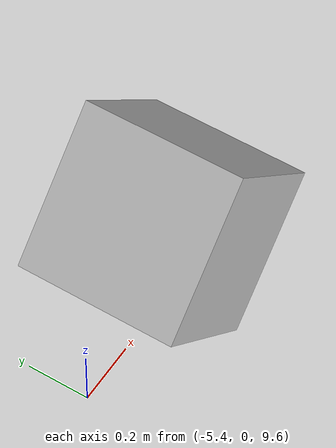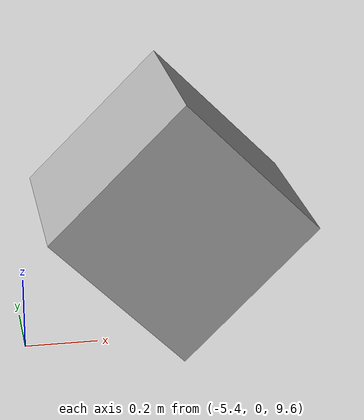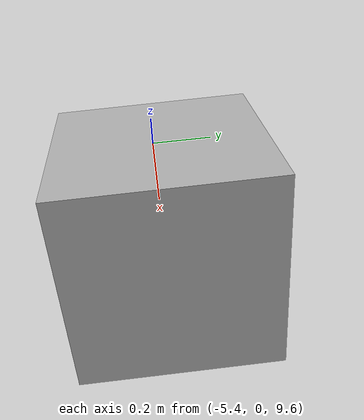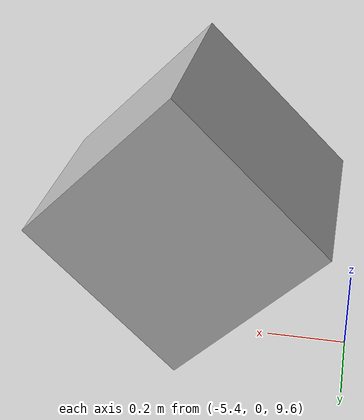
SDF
<?xml version="1.0" ?>
<sdf version="1.4">
  <world name="default">
    <include>
      <uri>model://ground_plane</uri>
    </include>
    <include>
      <uri>model://sun</uri>
    </include>

    <model name='camera'>
      <static>true</static>
      <pose>-5 0 10 0 0.785 0</pose>
      <link name='link'>
        <visual name='visual'>
          <geometry>
            <box>
              <size>0.5 0.5 0.5</size>
            </box>
          </geometry>
        </visual>
        <sensor name='my_camera' type='camera'>
          <camera>
            <save enabled="true">
              <path>/home/xslin/Documents/xslin/research/rpg_ws/src/test/video</path>
            </save>
            <horizontal_fov>1.047</horizontal_fov>
            <image>
              <width>1920</width>
              <height>1080</height>
            </image>
            <clip>
              <near>0.1</near>
              <far>100</far>
            </clip>
          </camera>
          <always_on>1</always_on>
          <update_rate>30</update_rate>
        </sensor>
      </link>
    </model>

    <!-- Only one ROS interface plugin is required per world, as any other plugin can connect a Gazebo
         topic to a ROS topic (or vise versa). -->
    <plugin name="ros_interface_plugin" filename="librotors_gazebo_ros_interface_plugin.so"/>

    <spherical_coordinates>
      <surface_model>EARTH_WGS84</surface_model>
      <latitude_deg>47.3667</latitude_deg>
      <longitude_deg>8.5500</longitude_deg>
      <elevation>500.0</elevation>
      <heading_deg>0</heading_deg>
    </spherical_coordinates>
    <physics type='ode'>
      <ode>
        <solver>
          <type>quick</type>
          <iters>1000</iters>
          <sor>1.3</sor>
        </solver>
        <constraints>
          <cfm>0</cfm>
          <erp>0.2</erp>
          <contact_max_correcting_vel>100</contact_max_correcting_vel>
          <contact_surface_layer>0.001</contact_surface_layer>
        </constraints>
      </ode>
      <max_step_size>0.01</max_step_size>
      <real_time_factor>1</real_time_factor>
      <real_time_update_rate>100</real_time_update_rate>
      <gravity>0 0 -9.8</gravity>
    </physics>
  </world>
</sdf>
